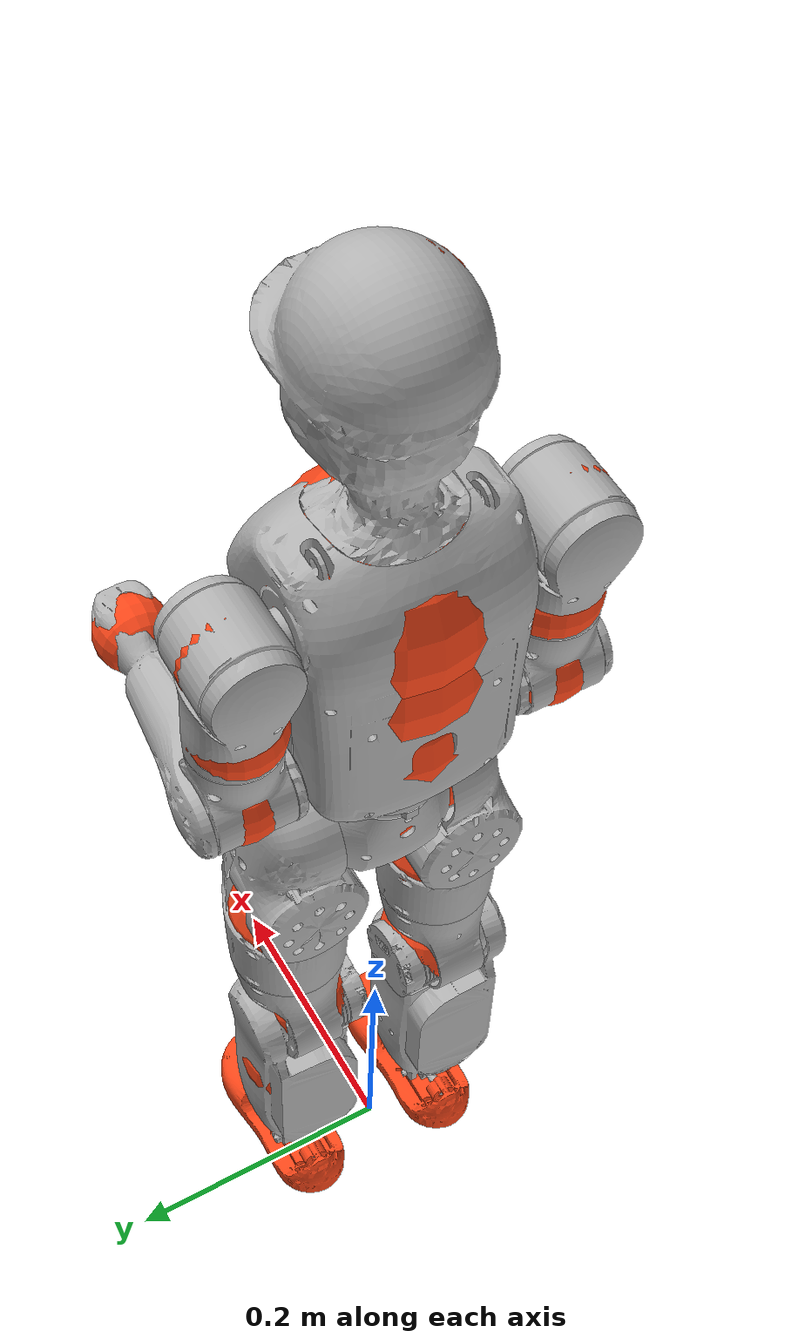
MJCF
<mujoco model="mini3">
  <default>
    <default class="robot">
      <default class="motor">
        <joint />
        <motor />
      </default>
      <default class="visual">
        <geom material="visualgeom" contype="0" conaffinity="0" group="2" />
      </default>
      <default class="collision">
        <geom material="collision_material" condim="3" contype="0" conaffinity="1" priority="1" group="1" solref="0.005 1" solimp="0.99 0.999 1e-05" friction="1 0.01 0.01" />
      </default>
    </default>
  </default>

  <compiler angle="radian" />

  <asset>
    <material name="default_material" rgba="0.7 0.7 0.7 1" />
    <material name="collision_material" rgba="1.0 0.28 0.1 0.9" />

    <mesh name="base_link.STL" file="../meshes/base_link.STL" />
    <mesh name="imu_link.STL" file="../meshes/imu_link.STL" />
    <mesh name="waist_yaw_link.STL" file="../meshes/waist_yaw_link.STL" />
    <mesh name="head_link.STL" file="../meshes/head_link.STL" />
    <mesh name="left_shoulder_pitch_link.STL" file="../meshes/left_shoulder_pitch_link.STL" />
    <mesh name="left_shoulder_roll_link.STL" file="../meshes/left_shoulder_roll_link.STL" />
    <mesh name="left_shoulder_yaw_link.STL" file="../meshes/left_shoulder_yaw_link.STL" />
    <mesh name="left_elbow_pitch_link.STL" file="../meshes/left_elbow_pitch_link.STL" />
    <mesh name="right_shoulder_pitch_link.STL" file="../meshes/right_shoulder_pitch_link.STL" />
    <mesh name="right_shoulder_roll_link.STL" file="../meshes/right_shoulder_roll_link.STL" />
    <mesh name="right_shoulder_yaw_link.STL" file="../meshes/right_shoulder_yaw_link.STL" />
    <mesh name="right_elbow_pitch_link.STL" file="../meshes/right_elbow_pitch_link.STL" />
    <mesh name="left_hip_pitch_link.STL" file="../meshes/left_hip_pitch_link.STL" />
    <mesh name="left_hip_roll_link.STL" file="../meshes/left_hip_roll_link.STL" />
    <mesh name="left_hip_yaw_link.STL" file="../meshes/left_hip_yaw_link.STL" />
    <mesh name="left_knee_pitch_link.STL" file="../meshes/left_knee_pitch_link.STL" />
    <mesh name="left_ankle_pitch_link.STL" file="../meshes/left_ankle_pitch_link.STL" />
    <mesh name="left_ankle_roll_link.STL" file="../meshes/left_ankle_roll_link.STL" />
    <mesh name="right_hip_pitch_link.STL" file="../meshes/right_hip_pitch_link.STL" />
    <mesh name="right_hip_roll_link.STL" file="../meshes/right_hip_roll_link.STL" />
    <mesh name="right_hip_yaw_link.STL" file="../meshes/right_hip_yaw_link.STL" />
    <mesh name="right_knee_pitch_link.STL" file="../meshes/right_knee_pitch_link.STL" />
    <mesh name="right_ankle_pitch_link.STL" file="../meshes/right_ankle_pitch_link.STL" />
    <mesh name="right_ankle_roll_link.STL" file="../meshes/right_ankle_roll_link.STL" />
  </asset>

  <worldbody>
    <body name="base_link" pos="0.00000000 0.00000000 0.43625000" quat="1 0 0 0" childclass="robot">
      <freejoint name="floating_base" />
      <inertial pos="0.02111631 -1.28e-06 0.00178229" quat="1.0 0.0 0.0 0.0" mass="1.13360075" diaginertia="0.00207686 0.00086116 0.00200971" />
      <geom name="base_link_collision_0" pos="0.0267125 4e-05 0.000793" quat="0.7071067907 0.7071067717 0 0" type="sphere" size="0.045" class="collision" />
      <geom name="base_link_collision_1" pos="0.0267125 -0.04596 0.000793" quat="0.7071067907 0.7071067717 0 0" type="sphere" size="0.04" class="collision" />
      <geom name="base_link_collision_2" pos="0.0267125 0.045 0.000793" quat="0.7071067907 0.7071067717 0 0" type="sphere" size="0.04" class="collision" />
      <geom name="base_link_visual" pos="0 0 0" quat="1 0 0 0" material="default_material" type="mesh" mesh="base_link.STL" class="visual" />
      <body name="imu_link" pos="0.0220001 0 -0.0446" quat="1 0 0 0">
        <inertial pos="9.401e-05 0.00068302 7.699e-05" quat="1.0 0.0 0.0 0.0" mass="0.008" diaginertia="3.8e-07 4.2e-07 6.4e-07" />
        <geom name="imu_link_visual" pos="0 0 0" quat="1 0 0 0" material="default_material" type="mesh" mesh="imu_link.STL" class="visual" />
      </body>
      <body name="left_hip_pitch_link" pos="0.022 0.0585 0" quat="1 0 0 0">
        <joint name="left_hip_pitch_joint" type="hinge" ref="0.0" class="motor" range="-2.7925 1.5" axis="0 1 0" armature="0.04654" frictionloss="1.0523104667663574" damping="0.2500821053981781" />
        <inertial pos="-0.00566049 0.00096583 -0.05703279" quat="1.0 0.0 0.0 0.0" mass="0.49168971" diaginertia="0.00047534 0.00050775 0.00029178" />
        <geom name="left_hip_pitch_link_visual" pos="0 0 0" quat="1 0 0 0" material="default_material" type="mesh" mesh="left_hip_pitch_link.STL" class="visual" />
        <body name="left_hip_roll_link" pos="0.0155 -0.0007 -0.065" quat="1 0 0 0">
          <joint name="left_hip_roll_joint" type="hinge" ref="0.0" class="motor" range="-0.8 1.3963" axis="1 0 0" armature="0.02649" frictionloss="1.0523104667663574" damping="0.2500821053981781" />
          <inertial pos="-0.01119856 -2.497e-05 -0.06229381" quat="1.0 0.0 0.0 0.0" mass="0.51517331" diaginertia="0.00048066 0.00050573 0.00032924" />
          <geom name="left_hip_roll_link_collision" pos="-0.0144919 -0.0004055 -0.04689" quat="1 0 0 0" type="sphere" size="0.04" class="collision" />
          <geom name="left_hip_roll_link_visual" pos="0 0 0" quat="1 0 0 0" material="default_material" type="mesh" mesh="left_hip_roll_link.STL" class="visual" />
          <body name="left_hip_yaw_link" pos="-0.0155 0 -0.09125" quat="1 0 0 0">
            <joint name="left_hip_yaw_joint" type="hinge" ref="0.0" class="motor" range="-2.7925 2.7925" axis="0 0 1" armature="0.02649" frictionloss="1.0523104667663574" damping="0.2500821053981781" />
            <inertial pos="-0.00854455 -0.00557037 -0.05395914" quat="1.0 0.0 0.0 0.0" mass="0.59815108" diaginertia="0.00058539 0.0005841 0.00038086" />
            <geom name="left_hip_yaw_link_collision" pos="-0.0068394 -0.006581 -0.06" quat="1 0 0 0" type="sphere" size="0.035" class="collision" />
            <geom name="left_hip_yaw_link_visual" pos="0 0 0" quat="1 0 0 0" material="default_material" type="mesh" mesh="left_hip_yaw_link.STL" class="visual" />
            <body name="left_knee_pitch_link" pos="-0.012 0.01525 -0.066" quat="1 0 0 0">
              <joint name="left_knee_pitch_joint" type="hinge" ref="0.0" class="motor" range="-1 2.3" axis="0 1 0" armature="0.04654" frictionloss="1.0523104667663574" damping="0.2500821053981781" />
              <inertial pos="0.00381939 -0.01379636 -0.10016467" quat="1.0 0.0 0.0 0.0" mass="1.18589581" diaginertia="0.00317113 0.00319072 0.00081569" />
              <geom name="left_knee_pitch_link_collision_0" pos="0.0060876 -0.0124135 -0.08" quat="1 0 0 0" type="sphere" size="0.037" class="collision" />
              <geom name="left_knee_pitch_link_collision_1" pos="0.0060876 -0.0124135 -0.15" quat="1 0 0 0" type="sphere" size="0.03" class="collision" />
              <geom name="left_knee_pitch_link_visual" pos="0 0 0" quat="1 0 0 0" material="default_material" type="mesh" mesh="left_knee_pitch_link.STL" class="visual" />
              <body name="left_ankle_pitch_link" pos="0.004 -0.015 -0.214" quat="1 0 0 0">
                <joint name="left_ankle_pitch_joint" type="hinge" ref="0.0" class="motor" range="-0.5236 0.5236" axis="0 1 0" armature="0.01" frictionloss="0.7" />
                <inertial pos="-0.0018402 0.00020854 0.0036183" quat="1.0 0.0 0.0 0.0" mass="0.039441" diaginertia="1.58e-06 4.91e-06 4.33e-06" />
                <geom name="left_ankle_pitch_link_visual" pos="0 0 0" quat="1 0 0 0" material="default_material" type="mesh" mesh="left_ankle_pitch_link.STL" class="visual" />
                <body name="left_ankle_roll_link" pos="0 0 0" quat="1 0 0 0">
                  <joint name="left_ankle_roll_joint" type="hinge" ref="0.0" class="motor" range="-0.2618 0.2618" axis="1 0 0" armature="0.01" frictionloss="0.7" />
                  <inertial pos="0.02038 1.403e-05 -0.014103" quat="1.0 0.0 0.0 0.0" mass="0.19803" diaginertia="6.075e-05 0.00033222 0.00035048" />
                  <geom name="left_ankle_roll_link_collision" pos="0 0 0" quat="1 0 0 0" type="mesh" mesh="left_ankle_roll_link.STL" class="collision" />
                  <geom name="left_ankle_roll_link_visual" pos="0 0 0" quat="1 0 0 0" material="default_material" type="mesh" mesh="left_ankle_roll_link.STL" class="visual" />
                </body>
              </body>
            </body>
          </body>
        </body>
      </body>
      <body name="right_hip_pitch_link" pos="0.022 -0.0585 0" quat="1 0 0 0">
        <joint name="right_hip_pitch_joint" type="hinge" ref="0.0" class="motor" range="-2.7925 1.5" axis="0 1 0" armature="0.04654" frictionloss="1.0523104667663574" damping="0.2500821053981781" />
        <inertial pos="-0.00566049 -0.00096583 -0.05703279" quat="1.0 0.0 0.0 0.0" mass="0.49168971" diaginertia="0.00047534 0.00050775 0.00029178" />
        <geom name="right_hip_pitch_link_visual" pos="0 0 0" quat="1 0 0 0" material="default_material" type="mesh" mesh="right_hip_pitch_link.STL" class="visual" />
        <body name="right_hip_roll_link" pos="0.0155 0.0007 -0.065" quat="1 0 0 0">
          <joint name="right_hip_roll_joint" type="hinge" ref="0.0" class="motor" range="-1.3963 0.8" axis="1 0 0" armature="0.02649" frictionloss="1.0523104667663574" damping="0.2500821053981781" />
          <inertial pos="-0.01119856 2.497e-05 -0.06229381" quat="1.0 0.0 0.0 0.0" mass="0.51517331" diaginertia="0.00048066 0.00050573 0.00032924" />
          <geom name="right_hip_roll_link_collision" pos="-0.0144919 0.0004055 -0.04689" quat="1 0 0 0" type="sphere" size="0.04" class="collision" />
          <geom name="right_hip_roll_link_visual" pos="0 0 0" quat="1 0 0 0" material="default_material" type="mesh" mesh="right_hip_roll_link.STL" class="visual" />
          <body name="right_hip_yaw_link" pos="-0.0155 0 -0.09125" quat="1 0 0 0">
            <joint name="right_hip_yaw_joint" type="hinge" ref="0.0" class="motor" range="-2.7925 2.7925" axis="0 0 1" armature="0.02649" frictionloss="1.0523104667663574" damping="0.2500821053981781" />
            <inertial pos="-0.00854455 0.00557037 -0.05395914" quat="1.0 0.0 0.0 0.0" mass="0.59815108" diaginertia="0.00058539 0.0005841 0.00038086" />
            <geom name="right_hip_yaw_link_collision" pos="-0.0068394 0.006581 -0.06" quat="1 0 0 0" type="sphere" size="0.035" class="collision" />
            <geom name="right_hip_yaw_link_visual" pos="0 0 0" quat="1 0 0 0" material="default_material" type="mesh" mesh="right_hip_yaw_link.STL" class="visual" />
            <body name="right_knee_pitch_link" pos="-0.012 -0.01525 -0.066" quat="1 0 0 0">
              <joint name="right_knee_pitch_joint" type="hinge" ref="0.0" class="motor" range="-1 2.3" axis="0 1 0" armature="0.04654" frictionloss="1.0523104667663574" damping="0.2500821053981781" />
              <inertial pos="0.00381939 0.01379636 -0.10016467" quat="1.0 0.0 0.0 0.0" mass="1.18589581" diaginertia="0.00317113 0.00319072 0.00081569" />
              <geom name="right_knee_pitch_link_collision_0" pos="0.0060876 0.0124135 -0.08" quat="1 0 0 0" type="sphere" size="0.037" class="collision" />
              <geom name="right_knee_pitch_link_collision_1" pos="0.0060876 0.0124135 -0.15" quat="1 0 0 0" type="sphere" size="0.03" class="collision" />
              <geom name="right_knee_pitch_link_visual" pos="0 0 0" quat="1 0 0 0" material="default_material" type="mesh" mesh="right_knee_pitch_link.STL" class="visual" />
              <body name="right_ankle_pitch_link" pos="0.004 0.015 -0.214" quat="1 0 0 0">
                <joint name="right_ankle_pitch_joint" type="hinge" ref="0.0" class="motor" range="-0.5236 0.5236" axis="0 1 0" armature="0.01" frictionloss="0.7" />
                <inertial pos="-0.0018402 -0.00020854 0.0036183" quat="1.0 0.0 0.0 0.0" mass="0.039441" diaginertia="1.58e-06 4.91e-06 4.33e-06" />
                <geom name="right_ankle_pitch_link_visual" pos="0 0 0" quat="1 0 0 0" material="default_material" type="mesh" mesh="right_ankle_pitch_link.STL" class="visual" />
                <body name="right_ankle_roll_link" pos="0 0 0" quat="1 0 0 0">
                  <joint name="right_ankle_roll_joint" type="hinge" ref="0.0" class="motor" range="-0.2618 0.2618" axis="1 0 0" armature="0.01" frictionloss="0.7" />
                  <inertial pos="0.02038 -1.403e-05 -0.014103" quat="1.0 0.0 0.0 0.0" mass="0.19803" diaginertia="6.075e-05 0.00033222 0.00035048" />
                  <geom name="right_ankle_roll_link_collision" pos="0 0 0" quat="1 0 0 0" type="mesh" mesh="right_ankle_roll_link.STL" class="collision" />
                  <geom name="right_ankle_roll_link_visual" pos="0 0 0" quat="1 0 0 0" material="default_material" type="mesh" mesh="right_ankle_roll_link.STL" class="visual" />
                </body>
              </body>
            </body>
          </body>
        </body>
      </body>
      <body name="waist_yaw_link" pos="0 0 0.0365" quat="1 0 0 0">
        <joint name="waist_yaw_joint" type="hinge" ref="0.0" class="motor" range="-2.7053 2.7053" axis="0 0 1" armature="0.02649" frictionloss="1.0523104667663574" damping="0.2500821053981781" />
        <inertial pos="0.00269559 -0.00015081 0.11851653" quat="1.0 0.0 0.0 0.0" mass="3.40784884" diaginertia="0.01667526 0.01613424 0.00736643" />
        <geom name="waist_yaw_link_collision_0" pos="0.0106449 0.0007628 0.137883" quat="1 0 0 0" type="sphere" size="0.07" class="collision" />
        <geom name="waist_yaw_link_collision_1" pos="0.0106449 0.0007628 0.175" quat="1 0 0 0" type="sphere" size="0.07" class="collision" />
        <geom name="waist_yaw_link_collision_2" pos="0.0106449 0.0007628 0.077883" quat="1 0 0 0" type="sphere" size="0.066" class="collision" />
        <geom name="waist_yaw_link_visual" pos="0 0 0" quat="1 0 0 0" material="default_material" type="mesh" mesh="waist_yaw_link.STL" class="visual" />
        <body name="head_link" pos="0.0025 0 0.2459" quat="1 0 0 0">
          <inertial pos="0.01357582 3.839e-05 0.0824584" quat="1.0 0.0 0.0 0.0" mass="0.67478886" diaginertia="0.00109895 0.00118675 0.00067794" />
          <geom name="head_link_collision" pos="0.013857 -0.000472 0.098378" quat="1 0 0 0" type="sphere" size="0.05" class="collision" />
          <geom name="head_link_visual" pos="0 0 0" quat="1 0 0 0" material="default_material" type="mesh" mesh="head_link.STL" class="visual" />
        </body>
        <body name="left_shoulder_pitch_link" pos="-0.0085 0.04735 0.1935" quat="1 0 0 0">
          <joint name="left_shoulder_pitch_joint" type="hinge" ref="0.0" class="motor" range="-3.6652 1.5708" axis="0 1 0" armature="0.00400" />
          <inertial pos="2.86e-05 0.053841 0" quat="1.0 0.0 0.0 0.0" mass="0.22189" diaginertia="8.725e-05 8.44e-05 8.902e-05" />
          <geom name="left_shoulder_pitch_link_collision" pos="0 0.055 0" quat="1 0 0 0" type="sphere" size="0.03" class="collision" />
          <geom name="left_shoulder_pitch_link_visual" pos="0 0 0" quat="1 0 0 0" material="default_material" type="mesh" mesh="left_shoulder_pitch_link.STL" class="visual" />
          <body name="left_shoulder_roll_link" pos="-0.001 0.0545 0" quat="1 0 0 0">
            <joint name="left_shoulder_roll_joint" type="hinge" ref="0.0" class="motor" range="0 3.1416" axis="1 0 0" armature="0.00400" />
            <inertial pos="0.0016973 0.00010225 -0.047752" quat="1.0 0.0 0.0 0.0" mass="0.27757" diaginertia="0.00020409 0.00023906 0.00013423" />
            <geom name="left_shoulder_roll_link_collision" pos="-0.0002091 -0.001 -0.06341" quat="1 0 0 0" type="sphere" size="0.03" class="collision" />
            <geom name="left_shoulder_roll_link_visual" pos="0 0 0" quat="1 0 0 0" material="default_material" type="mesh" mesh="left_shoulder_roll_link.STL" class="visual" />
            <body name="left_shoulder_yaw_link" pos="0.001 0.0003344 -0.0776" quat="1 0 0 0">
              <joint name="left_shoulder_yaw_joint" type="hinge" ref="0.0" class="motor" range="-1.5708 1.5708" axis="0 0 1" armature="0.00400" />
              <inertial pos="1.089e-05 0.00224178 -0.04716438" quat="1.0 0.0 0.0 0.0" mass="0.2207359" diaginertia="9.801e-05 9.299e-05 8.228e-05" />
              <geom name="left_shoulder_yaw_link_collision" pos="0 0 -0.05" quat="1 0 0 0" type="sphere" size="0.03" class="collision" />
              <geom name="left_shoulder_yaw_link_visual" pos="0 0 0" quat="1 0 0 0" material="default_material" type="mesh" mesh="left_shoulder_yaw_link.STL" class="visual" />
              <body name="left_elbow_pitch_link" pos="0 -0.0003344 -0.0494" quat="1 0 0 0">
                <joint name="left_elbow_pitch_joint" type="hinge" ref="0.0" class="motor" range="-0.7854 2.2" axis="0 1 0" armature="0.00400" />
                <inertial pos="0.080874 0.0034223 -0.0032059" quat="1.0 0.0 0.0 0.0" mass="0.14296" diaginertia="6.468e-05 0.00042228 0.00044113" />
                <geom name="left_elbow_pitch_link_collision_0" pos="0.134937 0.0008984 -0.0040539" quat="0.7071067907 0 0.7071067717 0" type="sphere" size="0.025" class="collision" />
                <geom name="left_elbow_pitch_link_collision_1" pos="0.064937 0.0008984 -0.0040539" quat="0.7071067907 0 0.7071067717 0" type="sphere" size="0.025" class="collision" />
                <geom name="left_elbow_pitch_link_visual" pos="0 0 0" quat="1 0 0 0" material="default_material" type="mesh" mesh="left_elbow_pitch_link.STL" class="visual" />
              </body>
            </body>
          </body>
        </body>
        <body name="right_shoulder_pitch_link" pos="-0.0085 -0.04735 0.1935" quat="1 0 0 0">
          <joint name="right_shoulder_pitch_joint" type="hinge" ref="0.0" class="motor" range="-3.6652 1.5708" axis="0 1 0" armature="0.00400" />
          <inertial pos="2.86e-05 -0.053841 0" quat="1.0 0.0 0.0 0.0" mass="0.22189" diaginertia="8.725e-05 8.44e-05 8.902e-05" />
          <geom name="right_shoulder_pitch_link_collision" pos="0 -0.055 0" quat="1 0 0 0" type="sphere" size="0.03" class="collision" />
          <geom name="right_shoulder_pitch_link_visual" pos="0 0 0" quat="1 0 0 0" material="default_material" type="mesh" mesh="right_shoulder_pitch_link.STL" class="visual" />
          <body name="right_shoulder_roll_link" pos="-0.001 -0.0545 0" quat="1 0 0 0">
            <joint name="right_shoulder_roll_joint" type="hinge" ref="0.0" class="motor" range="-3.1416 0" axis="1 0 0" armature="0.00400" />
            <inertial pos="0.0016973 -0.00010225 -0.047752" quat="1.0 0.0 0.0 0.0" mass="0.27757" diaginertia="0.00020409 0.00023906 0.00013423" />
            <geom name="right_shoulder_roll_link_collision" pos="-0.0002091 0.001 -0.06341" quat="1 0 0 0" type="sphere" size="0.03" class="collision" />
            <geom name="right_shoulder_roll_link_visual" pos="0 0 0" quat="1 0 0 0" material="default_material" type="mesh" mesh="right_shoulder_roll_link.STL" class="visual" />
            <body name="right_shoulder_yaw_link" pos="0.001 -0.0003344 -0.0776" quat="1 0 0 0">
              <joint name="right_shoulder_yaw_joint" type="hinge" ref="0.0" class="motor" range="-1.5708 1.5708" axis="0 0 1" armature="0.00400" />
              <inertial pos="1.089e-05 -0.00224178 -0.04716438" quat="1.0 0.0 0.0 0.0" mass="0.2207359" diaginertia="9.801e-05 9.299e-05 8.228e-05" />
              <geom name="right_shoulder_yaw_link_collision" pos="0 0 -0.05" quat="1 0 0 0" type="sphere" size="0.03" class="collision" />
              <geom name="right_shoulder_yaw_link_visual" pos="0 0 0" quat="1 0 0 0" material="default_material" type="mesh" mesh="right_shoulder_yaw_link.STL" class="visual" />
              <body name="right_elbow_pitch_link" pos="0 0.0003344 -0.0494" quat="1 0 0 0">
                <joint name="right_elbow_pitch_joint" type="hinge" ref="0.0" class="motor" range="-0.7854 2.2" axis="0 1 0" armature="0.00400" />
                <inertial pos="0.080874 -0.0034223 -0.0032059" quat="1.0 0.0 0.0 0.0" mass="0.14296" diaginertia="6.468e-05 0.00042228 0.00044113" />
                <geom name="right_elbow_pitch_link_collision_0" pos="0.134937 -0.0008984 -0.0040539" quat="0.7071067907 0 0.7071067717 0" type="sphere" size="0.025" class="collision" />
                <geom name="right_elbow_pitch_link_collision_1" pos="0.064937 -0.0008984 -0.0040539" quat="0.7071067907 0 0.7071067717 0" type="sphere" size="0.025" class="collision" />
                <geom name="right_elbow_pitch_link_visual" pos="0 0 0" quat="1 0 0 0" material="default_material" type="mesh" mesh="right_elbow_pitch_link.STL" class="visual" />
              </body>
            </body>
          </body>
        </body>
      </body>
      <site name="base_link_site" pos="0 0 0" quat="1 0 0 0" />
      <camera name="front_camera" mode="track" fovy="90.0" quat="4.329780281177467e-17 4.329780281177466e-17 0.7071067811865475 0.7071067811865476" pos="0.0 2.0 0.5" />
      <camera name="side_camera" mode="track" fovy="90.0" quat="-0.5 -0.4999999999999999 0.5 0.5000000000000001" pos="-2.0 0.0 0.5" />
    </body>
  </worldbody>

  <actuator>
    <motor name="left_hip_pitch_joint_ctrl" joint="left_hip_pitch_joint" class="motor" />
    <motor name="left_hip_roll_joint_ctrl" joint="left_hip_roll_joint" class="motor" />
    <motor name="left_hip_yaw_joint_ctrl" joint="left_hip_yaw_joint" class="motor" />
    <motor name="left_knee_pitch_joint_ctrl" joint="left_knee_pitch_joint" class="motor" />
    <motor name="left_ankle_pitch_joint_ctrl" joint="left_ankle_pitch_joint" class="motor" />
    <motor name="left_ankle_roll_joint_ctrl" joint="left_ankle_roll_joint" class="motor" />
    <motor name="right_hip_pitch_joint_ctrl" joint="right_hip_pitch_joint" class="motor" />
    <motor name="right_hip_roll_joint_ctrl" joint="right_hip_roll_joint" class="motor" />
    <motor name="right_hip_yaw_joint_ctrl" joint="right_hip_yaw_joint" class="motor" />
    <motor name="right_knee_pitch_joint_ctrl" joint="right_knee_pitch_joint" class="motor" />
    <motor name="right_ankle_pitch_joint_ctrl" joint="right_ankle_pitch_joint" class="motor" />
    <motor name="right_ankle_roll_joint_ctrl" joint="right_ankle_roll_joint" class="motor" />
    <motor name="waist_yaw_joint_ctrl" joint="waist_yaw_joint" class="motor" />
    <motor name="left_shoulder_pitch_joint_ctrl" joint="left_shoulder_pitch_joint" class="motor" />
    <motor name="left_shoulder_roll_joint_ctrl" joint="left_shoulder_roll_joint" class="motor" />
    <motor name="left_shoulder_yaw_joint_ctrl" joint="left_shoulder_yaw_joint" class="motor" />
    <motor name="left_elbow_pitch_joint_ctrl" joint="left_elbow_pitch_joint" class="motor" />
    <motor name="right_shoulder_pitch_joint_ctrl" joint="right_shoulder_pitch_joint" class="motor" />
    <motor name="right_shoulder_roll_joint_ctrl" joint="right_shoulder_roll_joint" class="motor" />
    <motor name="right_shoulder_yaw_joint_ctrl" joint="right_shoulder_yaw_joint" class="motor" />
    <motor name="right_elbow_pitch_joint_ctrl" joint="right_elbow_pitch_joint" class="motor" />
  </actuator>

  <contact>
    <exclude body1="base_link" body2="imu_link" />
    <exclude body1="base_link" body2="waist_yaw_link" />
    <exclude body1="waist_yaw_link" body2="head_link" />
    <exclude body1="waist_yaw_link" body2="left_shoulder_pitch_link" />
    <exclude body1="left_shoulder_pitch_link" body2="left_shoulder_roll_link" />
    <exclude body1="left_shoulder_roll_link" body2="left_shoulder_yaw_link" />
    <exclude body1="left_shoulder_yaw_link" body2="left_elbow_pitch_link" />
    <exclude body1="waist_yaw_link" body2="right_shoulder_pitch_link" />
    <exclude body1="right_shoulder_pitch_link" body2="right_shoulder_roll_link" />
    <exclude body1="right_shoulder_roll_link" body2="right_shoulder_yaw_link" />
    <exclude body1="right_shoulder_yaw_link" body2="right_elbow_pitch_link" />
    <exclude body1="base_link" body2="left_hip_pitch_link" />
    <exclude body1="left_hip_pitch_link" body2="left_hip_roll_link" />
    <exclude body1="left_hip_roll_link" body2="left_hip_yaw_link" />
    <exclude body1="left_hip_yaw_link" body2="left_knee_pitch_link" />
    <exclude body1="left_knee_pitch_link" body2="left_ankle_pitch_link" />
    <exclude body1="left_ankle_pitch_link" body2="left_ankle_roll_link" />
    <exclude body1="base_link" body2="right_hip_pitch_link" />
    <exclude body1="right_hip_pitch_link" body2="right_hip_roll_link" />
    <exclude body1="right_hip_roll_link" body2="right_hip_yaw_link" />
    <exclude body1="right_hip_yaw_link" body2="right_knee_pitch_link" />
    <exclude body1="right_knee_pitch_link" body2="right_ankle_pitch_link" />
    <exclude body1="right_ankle_pitch_link" body2="right_ankle_roll_link" />
  </contact>

  <sensor>
    <framepos name="base_link_site_pos" objtype="site" objname="base_link_site" />
    <framequat name="base_link_site_quat" objtype="site" objname="base_link_site" />
    <framelinvel name="base_link_site_linvel" objtype="site" objname="base_link_site" />
    <frameangvel name="base_link_site_angvel" objtype="site" objname="base_link_site" />
    <velocimeter name="base_link_site_vel" site="base_link_site" />
  </sensor>
</mujoco>
